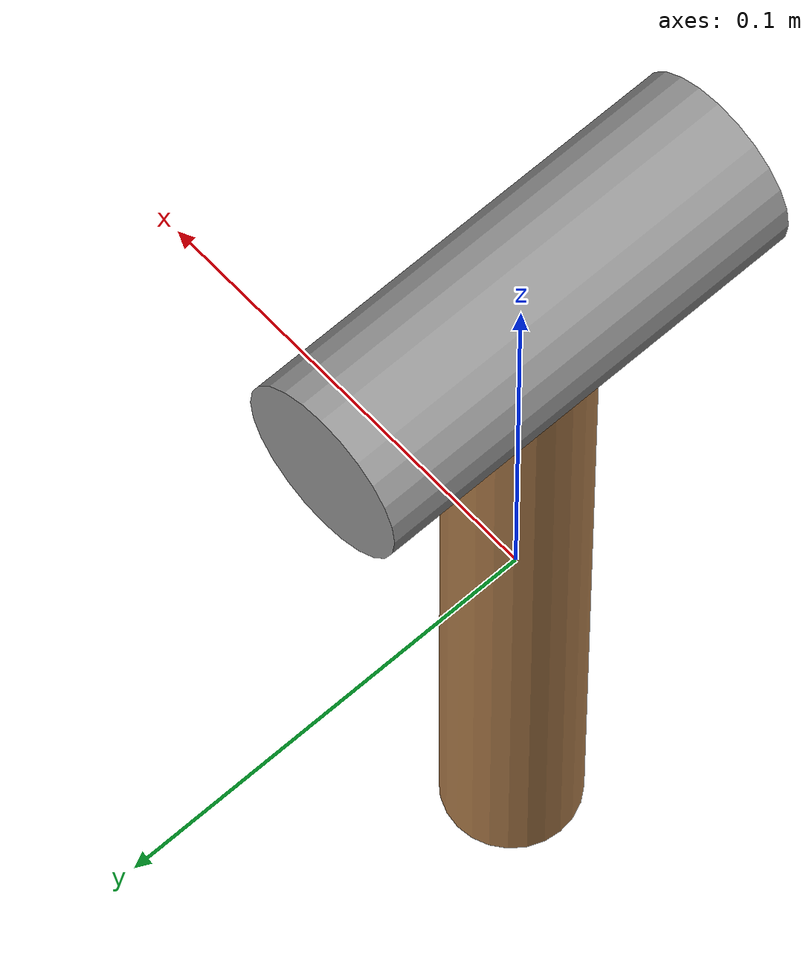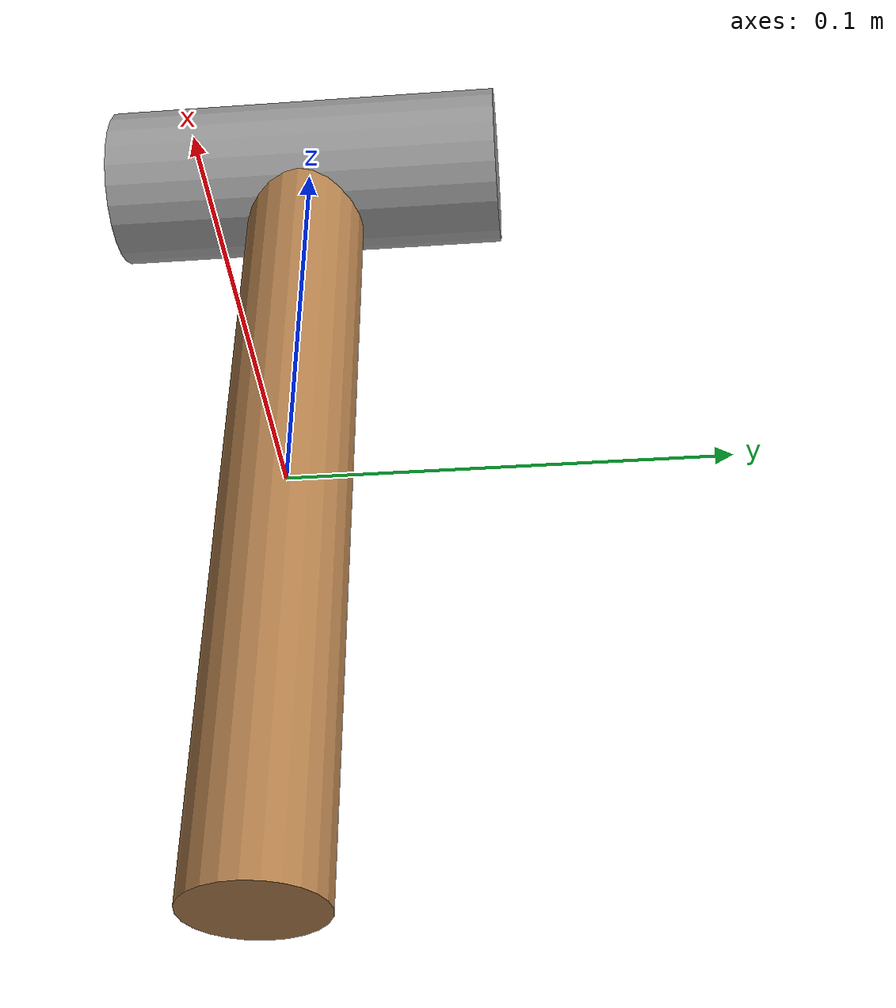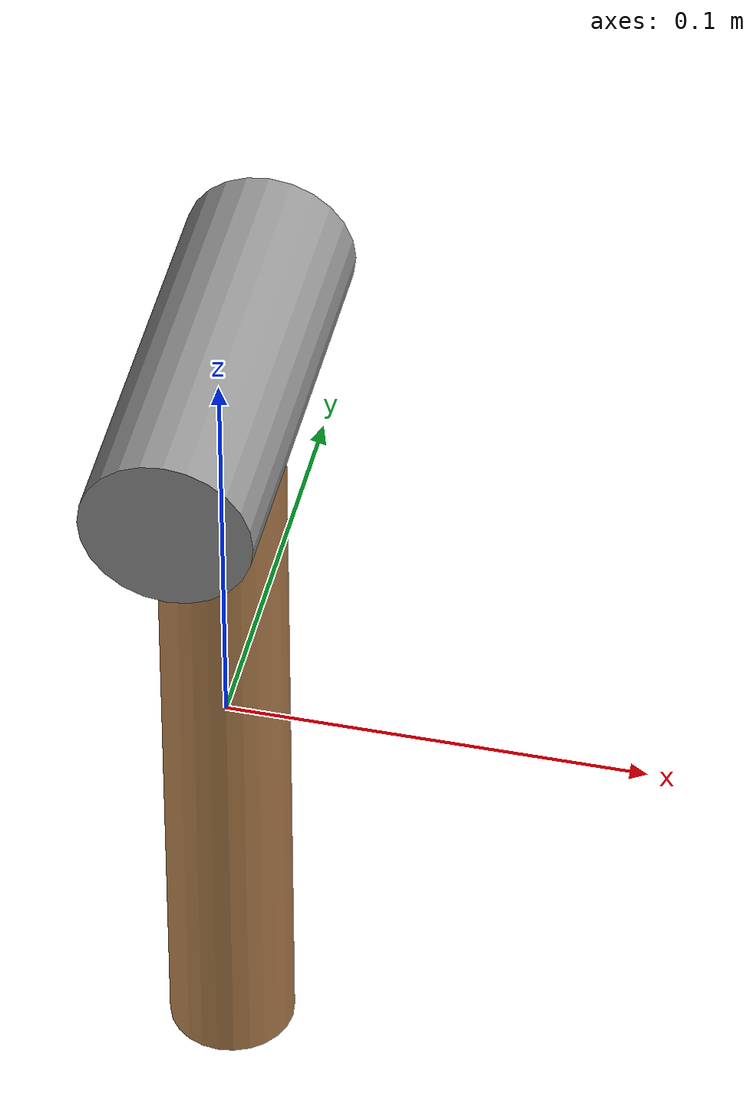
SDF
<?xml version="1.0"?>
<sdf version="1.4">
	<model name="hammer">
		<static>false</static>
		<link name="link">
			<pose>0 0 0 0 0 0</pose>
			<inertial>
				<mass>0.390</mass>
				<inertia>
					<ixx>0.00058</ixx>
					<ixy>0</ixy>
					<ixz>0</ixz>
					<iyy>0.00058</iyy>
					<iyz>0</iyz>
					<izz>0.00019</izz>
				</inertia>
			</inertial>
			<collision name="shaft">
				<pose>0 0 0 0 0 0</pose>
				<geometry>
					<cylinder>
						<radius>0.015</radius>
						<length>0.2</length>
					</cylinder>
				</geometry>
			</collision>
			<visual name="visual_shaft">
				<pose>0 0 0 0 0 0</pose>
				<geometry>
					<cylinder>
						<radius>0.015</radius>
						<length>0.2</length>
					</cylinder>
				</geometry>
				<material>
					<script>
						<uri>file://media/materials/scripts/gazebo.material</uri>
						<name>Gazebo/Wood</name>
					</script>
				</material>
			</visual>
			<collision name="head">
				<pose>0 0 0.1 1.57 0 0</pose>
				<geometry>
					<cylinder>
						<radius>0.02</radius>
						<length>0.1</length>
					</cylinder>
				</geometry>
			</collision>
			<visual name="visual_head">
				<pose>0 0 0.1 1.57 0 0</pose>
				<geometry>
					<cylinder>
						<radius>0.02</radius>
						<length>0.1</length>
					</cylinder>
				</geometry>
				<material>
					<script>
						<uri>file://media/materials/scripts/gazebo.material</uri>
						<name>Gazebo/Grey</name>
					</script>
				</material>
			</visual>
		</link>
	</model>
</sdf>
